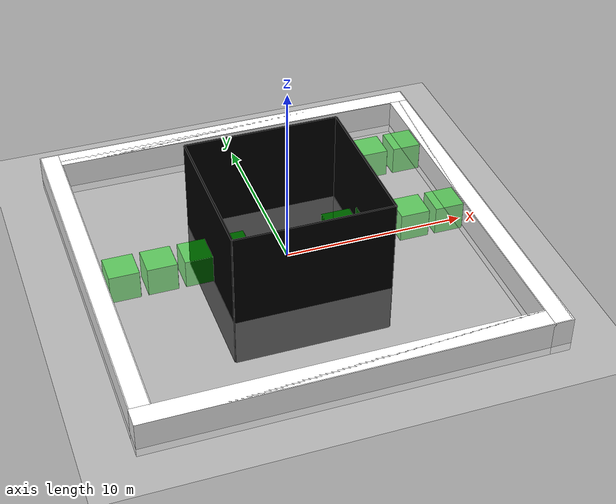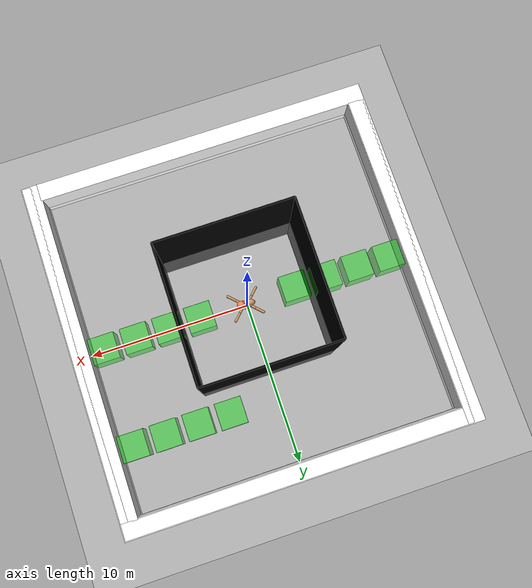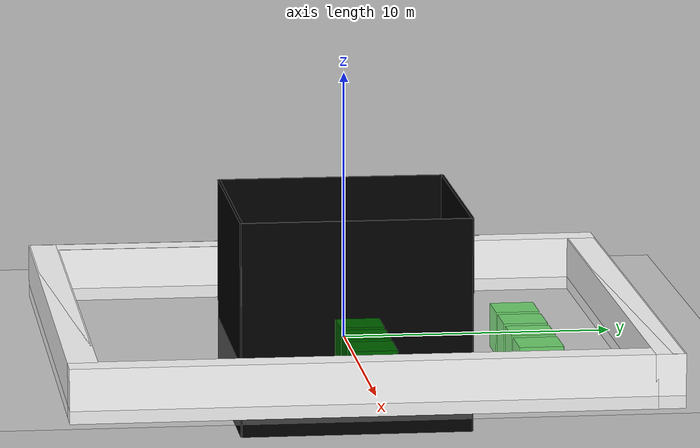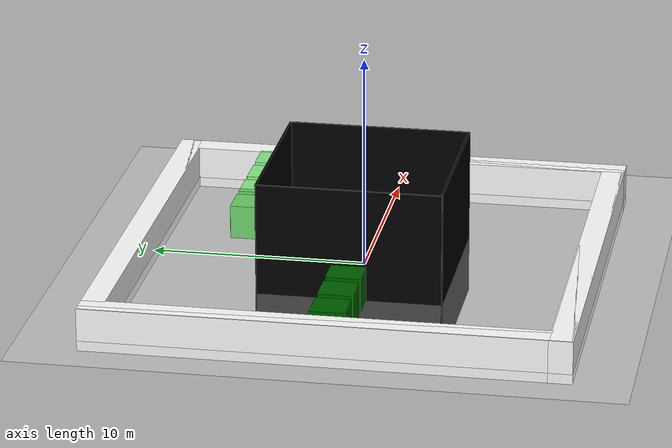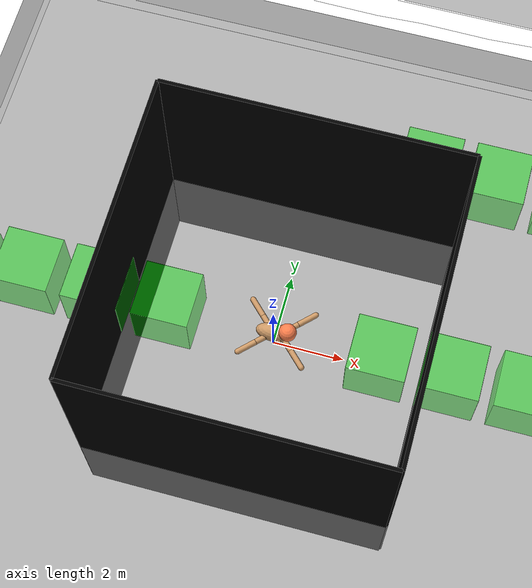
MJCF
<mujoco model="ant">
  <compiler angle="degree" coordinate="local" inertiafromgeom="true" settotalmass="40" eulerseq="XYZ"/>
  <option integrator="RK4" timestep="0.005"/>
  <custom>
    <numeric data="0.0 0.0 0.55 1.0 0.0 0.0 0.0 0.0 1.0 0.0 -1.0 0.0 -1.0 0.0 1.0" name="init_qpos"/>
  </custom>
  <default>
    <joint armature="1" damping="1" limited="true"/>
    <geom conaffinity="1" contype="1" condim="3" density="5.0" friction="1 0.5 0.5" margin="0.01" rgba="0.8 0.6 0.4 1" material="geom"/>
  </default>
    <asset>
        <texture type="skybox" builtin="gradient" rgb1=".1 .12 .15" rgb2="0 0 0" width="100" height="100"/>
        <texture builtin="checker" height="100" name="texplane" rgb1=".35 .65 .65" rgb2=".0 .4 0.6" type="2d" width="100"/>
        <material name="MatPlane" reflectance="0.25" shininess="1" specular="1" texrepeat="50 50" texture="texplane"/>
        <texture builtin="flat" height="1278" mark="cross" markrgb="1 1 1" name="texgeom" random="0.01" rgb1="0.8 0.6 0.4" rgb2="0.8 0.6 0.4" type="cube" width="127"/>
        <material name="geom" texture="texgeom" texuniform="true"/>
    </asset>
  <worldbody>
    <light directional="true" cutoff="100" exponent="1" diffuse="1 1 1" specular=".1 .1 .1" pos="0 0 1.3" dir="-0 0 -1.3" />
    <geom name='floor' material="MatPlane" pos='0 0 0' size='40 40 40' type='plane' rgba='0.9 0.9 0.9 1' condim='3' group="1"/>

    <geom name="wall-0" pos=" -0.5 -10.5  0.5" rgba="1. 1. 1. 1" size="10.5   0.5  1.0" type="box" material="" group="1" />
    <geom name="wall-1" pos="-10.5   0.5  0.5" rgba="1. 1. 1. 1" size=" 0.5  10.5  1.0" type="box" material="" group="1" />
    <geom name="wall-2" pos="  0.5  10.5  0.5" rgba="1. 1. 1. 1" size="10.5   0.5  1.0" type="box" material="" group="1" />
    <geom name="wall-3" pos=" 10.5  -0.5  0.5" rgba="1. 1. 1. 1" size=" 0.5  10.5  1.0" type="box" material="" group="1" />

    <site name="s-wall-0" pos=" -0.5 -10.5  0.5" rgba="1. 1. 1. 1" size="10.55   0.55  1.0" type="box" material="" group="1" />
    <site name="s-wall-1" pos="-10.5   0.5  0.5" rgba="1. 1. 1. 1" size=" 0.55  10.55  1.0" type="box" material="" group="1" />
    <site name="s-wall-2" pos="  0.5  10.5  0.5" rgba="1. 1. 1. 1" size="10.55   0.55  1.0" type="box" material="" group="1" />
    <site name="s-wall-3" pos=" 10.5  -0.5  0.5" rgba="1. 1. 1. 1" size=" 0.55  10.55  1.0" type="box" material="" group="1" />

    <body name="target_g0" pos = "9 0 0.8">
      <site name="t00" pos=" 0.8  0.0 0.0" rgba="0.0 1.0 0.0 0.4" size="0.01 0.8   0.8 " type="box" group="1"/>
      <site name="t01" pos="-0.8  0.0 0.0" rgba="0.0 1.0 0.0 0.4" size="0.01 0.8   0.8 " type="box" group="1"/>
      <site name="t02" pos=" 0.0  0.8 0.0" rgba="0.0 1.0 0.0 0.4" size="0.8  0.01  0.8 " type="box" group="1"/>
      <site name="t03" pos=" 0.0 -0.8 0.0" rgba="0.0 1.0 0.0 0.4" size="0.8  0.01  0.8 " type="box" group="1"/>
      <site name="t04" pos=" 0.0  0.0 0.8" rgba="0.0 1.0 0.0 0.4" size="0.8  0.8   0.01" type="box" group="1"/>
    </body>

    <body name="target_g1" pos = "7 0 0.8">
      <site name="t10" pos=" 0.8  0.0 0.0" rgba="0.0 1.0 0.0 0.4" size="0.01 0.8   0.8 " type="box" group="1"/>
      <site name="t11" pos="-0.8  0.0 0.0" rgba="0.0 1.0 0.0 0.4" size="0.01 0.8   0.8 " type="box" group="1"/>
      <site name="t12" pos=" 0.0  0.8 0.0" rgba="0.0 1.0 0.0 0.4" size="0.8  0.01  0.8 " type="box" group="1"/>
      <site name="t13" pos=" 0.0 -0.8 0.0" rgba="0.0 1.0 0.0 0.4" size="0.8  0.01  0.8 " type="box" group="1"/>
      <site name="t14" pos=" 0.0  0.0 0.8" rgba="0.0 1.0 0.0 0.4" size="0.8  0.8   0.01" type="box" group="1"/>
    </body>

    <body name="target_g2" pos = "5 0 0.8">
      <site name="t20" pos=" 0.8  0.0 0.0" rgba="0.0 1.0 0.0 0.4" size="0.01 0.8   0.8 " type="box" group="1"/>
      <site name="t21" pos="-0.8  0.0 0.0" rgba="0.0 1.0 0.0 0.4" size="0.01 0.8   0.8 " type="box" group="1"/>
      <site name="t22" pos=" 0.0  0.8 0.0" rgba="0.0 1.0 0.0 0.4" size="0.8  0.01  0.8 " type="box" group="1"/>
      <site name="t23" pos=" 0.0 -0.8 0.0" rgba="0.0 1.0 0.0 0.4" size="0.8  0.01  0.8 " type="box" group="1"/>
      <site name="t24" pos=" 0.0  0.0 0.8" rgba="0.0 1.0 0.0 0.4" size="0.8  0.8   0.01" type="box" group="1"/>
    </body>

    <body name="target_g3" pos = "3 0 0.8">
      <site name="t30" pos=" 0.8  0.0 0.0" rgba="0.0 1.0 0.0 0.4" size="0.01 0.8   0.8 " type="box" group="1"/>
      <site name="t31" pos="-0.8  0.0 0.0" rgba="0.0 1.0 0.0 0.4" size="0.01 0.8   0.8 " type="box" group="1"/>
      <site name="t32" pos=" 0.0  0.8 0.0" rgba="0.0 1.0 0.0 0.4" size="0.8  0.01  0.8 " type="box" group="1"/>
      <site name="t33" pos=" 0.0 -0.8 0.0" rgba="0.0 1.0 0.0 0.4" size="0.8  0.01  0.8 " type="box" group="1"/>
      <site name="t34" pos=" 0.0  0.0 0.8" rgba="0.0 1.0 0.0 0.4" size="0.8  0.8   0.01" type="box" group="1"/>
    </body>

    <body name="target_g4" pos = "-3 0 0.8">
      <site name="t40" pos=" 0.8  0.0 0.0" rgba="0.0 1.0 0.0 0.4" size="0.01 0.8   0.8 " type="box" group="1"/>
      <site name="t41" pos="-0.8  0.0 0.0" rgba="0.0 1.0 0.0 0.4" size="0.01 0.8   0.8 " type="box" group="1"/>
      <site name="t42" pos=" 0.0  0.8 0.0" rgba="0.0 1.0 0.0 0.4" size="0.8  0.01  0.8 " type="box" group="1"/>
      <site name="t43" pos=" 0.0 -0.8 0.0" rgba="0.0 1.0 0.0 0.4" size="0.8  0.01  0.8 " type="box" group="1"/>
      <site name="t44" pos=" 0.0  0.0 0.8" rgba="0.0 1.0 0.0 0.4" size="0.8  0.8   0.01" type="box" group="1"/>
    </body>

    <body name="target_g5" pos = "-5 0 0.8">
      <site name="t50" pos=" 0.8  0.0 0.0" rgba="0.0 1.0 0.0 0.4" size="0.01 0.8   0.8 " type="box" group="1"/>
      <site name="t51" pos="-0.8  0.0 0.0" rgba="0.0 1.0 0.0 0.4" size="0.01 0.8   0.8 " type="box" group="1"/>
      <site name="t52" pos=" 0.0  0.8 0.0" rgba="0.0 1.0 0.0 0.4" size="0.8  0.01  0.8 " type="box" group="1"/>
      <site name="t53" pos=" 0.0 -0.8 0.0" rgba="0.0 1.0 0.0 0.4" size="0.8  0.01  0.8 " type="box" group="1"/>
      <site name="t54" pos=" 0.0  0.0 0.8" rgba="0.0 1.0 0.0 0.4" size="0.8  0.8   0.01" type="box" group="1"/>
    </body>

    <body name="target_g6" pos = "-7 0 0.8">
      <site name="t60" pos=" 0.8  0.0 0.0" rgba="0.0 1.0 0.0 0.4" size="0.01 0.8   0.8 " type="box" group="1"/>
      <site name="t61" pos="-0.8  0.0 0.0" rgba="0.0 1.0 0.0 0.4" size="0.01 0.8   0.8 " type="box" group="1"/>
      <site name="t62" pos=" 0.0  0.8 0.0" rgba="0.0 1.0 0.0 0.4" size="0.8  0.01  0.8 " type="box" group="1"/>
      <site name="t63" pos=" 0.0 -0.8 0.0" rgba="0.0 1.0 0.0 0.4" size="0.8  0.01  0.8 " type="box" group="1"/>
      <site name="t64" pos=" 0.0  0.0 0.8" rgba="0.0 1.0 0.0 0.4" size="0.8  0.8   0.01" type="box" group="1"/>
    </body>

    <body name="target_g7" pos = "-9 0 0.8">
      <site name="t70" pos=" 0.8  0.0 0.0" rgba="0.0 1.0 0.0 0.4" size="0.01 0.8   0.8 " type="box" group="1"/>
      <site name="t71" pos="-0.8  0.0 0.0" rgba="0.0 1.0 0.0 0.4" size="0.01 0.8   0.8 " type="box" group="1"/>
      <site name="t72" pos=" 0.0  0.8 0.0" rgba="0.0 1.0 0.0 0.4" size="0.8  0.01  0.8 " type="box" group="1"/>
      <site name="t73" pos=" 0.0 -0.8 0.0" rgba="0.0 1.0 0.0 0.4" size="0.8  0.01  0.8 " type="box" group="1"/>
      <site name="t74" pos=" 0.0  0.0 0.8" rgba="0.0 1.0 0.0 0.4" size="0.8  0.8   0.01" type="box" group="1"/>
    </body>

    <body name="target_g8" pos = "9 6 0.8">
      <site name="t80" pos=" 0.8  0.0 0.0" rgba="0.0 1.0 0.0 0.4" size="0.01 0.8   0.8 " type="box" group="1"/>
      <site name="t81" pos="-0.8  0.0 0.0" rgba="0.0 1.0 0.0 0.4" size="0.01 0.8   0.8 " type="box" group="1"/>
      <site name="t82" pos=" 0.0  0.8 0.0" rgba="0.0 1.0 0.0 0.4" size="0.8  0.01  0.8 " type="box" group="1"/>
      <site name="t83" pos=" 0.0 -0.8 0.0" rgba="0.0 1.0 0.0 0.4" size="0.8  0.01  0.8 " type="box" group="1"/>
      <site name="t84" pos=" 0.0  0.0 0.8" rgba="0.0 1.0 0.0 0.4" size="0.8  0.8   0.01" type="box" group="1"/>
    </body>

    <body name="target_g9" pos = "7 6 0.8">
      <site name="t90" pos=" 0.8  0.0 0.0" rgba="0.0 1.0 0.0 0.4" size="0.01 0.8   0.8 " type="box" group="1"/>
      <site name="t91" pos="-0.8  0.0 0.0" rgba="0.0 1.0 0.0 0.4" size="0.01 0.8   0.8 " type="box" group="1"/>
      <site name="t92" pos=" 0.0  0.8 0.0" rgba="0.0 1.0 0.0 0.4" size="0.8  0.01  0.8 " type="box" group="1"/>
      <site name="t93" pos=" 0.0 -0.8 0.0" rgba="0.0 1.0 0.0 0.4" size="0.8  0.01  0.8 " type="box" group="1"/>
      <site name="t94" pos=" 0.0  0.0 0.8" rgba="0.0 1.0 0.0 0.4" size="0.8  0.8   0.01" type="box" group="1"/>
    </body>

    <body name="target_g10" pos = "5 6 0.8">
      <site name="t100" pos=" 0.8  0.0 0.0" rgba="0.0 1.0 0.0 0.4" size="0.01 0.8   0.8 " type="box" group="1"/>
      <site name="t101" pos="-0.8  0.0 0.0" rgba="0.0 1.0 0.0 0.4" size="0.01 0.8   0.8 " type="box" group="1"/>
      <site name="t102" pos=" 0.0  0.8 0.0" rgba="0.0 1.0 0.0 0.4" size="0.8  0.01  0.8 " type="box" group="1"/>
      <site name="t103" pos=" 0.0 -0.8 0.0" rgba="0.0 1.0 0.0 0.4" size="0.8  0.01  0.8 " type="box" group="1"/>
      <site name="t104" pos=" 0.0  0.0 0.8" rgba="0.0 1.0 0.0 0.4" size="0.8  0.8   0.01" type="box" group="1"/>
    </body>

    <body name="target_g11" pos = "3 6 0.8">
      <site name="t110" pos=" 0.8  0.0 0.0" rgba="0.0 1.0 0.0 0.4" size="0.01 0.8   0.8 " type="box" group="1"/>
      <site name="t111" pos="-0.8  0.0 0.0" rgba="0.0 1.0 0.0 0.4" size="0.01 0.8   0.8 " type="box" group="1"/>
      <site name="t112" pos=" 0.0  0.8 0.0" rgba="0.0 1.0 0.0 0.4" size="0.8  0.01  0.8 " type="box" group="1"/>
      <site name="t113" pos=" 0.0 -0.8 0.0" rgba="0.0 1.0 0.0 0.4" size="0.8  0.01  0.8 " type="box" group="1"/>
      <site name="t114" pos=" 0.0  0.0 0.8" rgba="0.0 1.0 0.0 0.4" size="0.8  0.8   0.01" type="box" group="1"/>
    </body>

    <camera name="global_camera" mode="fixed" pos="0 0 30.0" xyaxes="1 0 0 0 1 0"/>
    <camera name="global_camera_2" mode="fixed" pos="-15.5 -15.5 25.0" euler="40 0 -45"/>

    <body name="torso" pos="0 0 0.75">
      <geom name="torso_geom" pos="0 0 0" size="0.50 0.25 0.25" type="ellipsoid"/>
      <body name="head" pos="0.4 0 0.25">
	<camera name="front_camera" mode="fixed" pos="-0.1 0 0" euler="90 0 -90"/>
        <geom name="head_geom" density="0.01" rgba="1.0 0.5 0.3 1" pos="0.0 0.0 0.0" size="0.25" type="sphere"/>
        <site name="head_site" pos="0.0 0.0 0.0" size="0.005" type="sphere"/>
      </body>
      <body name="limit" pos = "0 0 0">
        <site name="lim0" pos=" 4.26  0.0 0.5" rgba="0.0 0.0 0.0 1" size="0.05 4.26 4.0" type="box" material="" group="1"/>
        <site name="lim1" pos="-4.26  0.0 0.5" rgba="0.0 0.0 0.0 1" size="0.05 4.26 4.0" type="box" material="" group="1"/>
        <site name="lim2" pos=" 0.0  4.26 0.5" rgba="0.0 0.0 0.0 1" size="4.26 0.05 4.0" type="box" material="" group="1"/>
        <site name="lim3" pos=" 0.0 -4.26 0.5" rgba="0.0 0.0 0.0 1" size="4.26 0.05 4.0" type="box" material="" group="1"/>
      </body>
      <joint armature="0" damping="0" limited="false" margin="0.01" name="root" pos="0 0 0" type="free"/>
      <body name="front_left_leg" pos="0 0 0">
        <geom fromto="0.0 0.0 0.0 0.2 0.2 0.0" name="aux_1_geom" size="0.08" type="capsule"/>
        <body name="aux_1" pos="0.4 0.2 0">
          <joint axis="0 0 1" name="hip_1" pos="0.0 0.0 0.0" range="-30 30" type="hinge"/>
          <geom fromto="0.0 0.0 0.0 0.2 0.2 0.0" name="front_left_leg_geom" size="0.08" type="capsule"/>
          <site fromto="0.0 0.0 0.0 0.2 0.2 0.0" name="front_left_leg_site" size="0.005" type="capsule"/>
          <body name="aux_11" pos="0.2 0.2 0">
            <joint axis="-1 1 0" name="ankle_1" pos="0.0 0.0 0.0" range="30 70" type="hinge"/>
            <geom fromto="0.0 0.0 0.0 0.4 0.4 0.0" name="front_left_ankle_geom" size="0.08" type="capsule"/>
            <site fromto="0.0 0.0 0.0 0.4 0.4 0.0" name="front_left_ankle_site" size="0.005" type="capsule"/>
          </body>
        </body>
      </body>
      <body name="front_right_leg" pos="0 0 0">
        <geom fromto="0.0 0.0 0.0 -0.2 0.2 0.0" name="aux_2_geom" size="0.08" type="capsule"/>
        <body name="aux_2" pos="-0.2 0.2 0">
          <joint axis="0 0 1" name="hip_2" pos="0.0 0.0 0.0" range="-30 30" type="hinge"/>
          <geom fromto="0.0 0.0 0.0 -0.2 0.2 0.0" name="front_right_leg_geom" size="0.08" type="capsule"/>
          <body name="aux_22" pos="-0.2 0.2 0">
            <joint axis="1 1 0" name="ankle_2" pos="0.0 0.0 0.0" range="-70 -30" type="hinge"/>
            <geom fromto="0.0 0.0 0.0 -0.4 0.4 0.0" name="front_right_ankle_geom" size="0.08" type="capsule"/>
          </body>
        </body>
      </body>
      <body name="back_leg" pos="0 0 0">
        <geom fromto="0.0 0.0 0.0 -0.2 -0.2 0.0" name="aux_3_geom" size="0.08" type="capsule"/>
        <body name="aux_3" pos="-0.2 -0.2 0">
          <joint axis="0 0 1" name="hip_3" pos="0.0 0.0 0.0" range="-30 30" type="hinge"/>
          <geom fromto="0.0 0.0 0.0 -0.2 -0.2 0.0" name="left_back_leg_geom" size="0.08" type="capsule"/>
          <body name="aux_33" pos="-0.2 -0.2 0">
            <joint axis="-1 1 0" name="ankle_3" pos="0.0 0.0 0.0" range="-70 -30" type="hinge"/>
            <geom fromto="0.0 0.0 0.0 -0.4 -0.4 0.0" name="left_back_ankle_geom" size="0.08" type="capsule"/>
          </body>
        </body>
      </body>
      <body name="right_back_leg" pos="0 0 0">
        <geom fromto="0.0 0.0 0.0 0.2 -0.2 0.0" name="aux_4_geom" size="0.08" type="capsule"/>
        <body name="aux_4" pos="0.4 -0.2 0">
          <joint axis="0 0 1" name="hip_4" pos="0.0 0.0 0.0" range="-30 30" type="hinge"/>
          <geom fromto="0.0 0.0 0.0 0.2 -0.2 0.0" name="right_back_leg_geom" size="0.08" type="capsule"/>
          <body name="aux_44" pos="0.2 -0.2 0">
            <joint axis="1 1 0" name="ankle_4" pos="0.0 0.0 0.0" range="30 70" type="hinge"/>
            <geom fromto="0.0 0.0 0.0 0.4 -0.4 0.0" name="right_back_ankle_geom" size="0.08" type="capsule"/>
          </body>
        </body>
      </body>
    </body>
    <site name="target_0" pos="  9 0 0.8" rgba="0.5 0.1 0.1 0.0" size="0.8  0.8  0.8" type="box" group="1" />
    <site name="target_1" pos="  7 0 0.8" rgba="0.5 0.1 0.1 0.0" size="0.8  0.8  0.8" type="box" group="1" />
    <site name="target_2" pos="  5 0 0.8" rgba="0.5 0.1 0.1 0.0" size="0.8  0.8  0.8" type="box" group="1" />
    <site name="target_3" pos="  3 0 0.8" rgba="0.5 0.1 0.1 0.0" size="0.8  0.8  0.8" type="box" group="1" />
    <site name="target_4" pos=" -3 0 0.8" rgba="0.5 0.1 0.1 0.0" size="0.8  0.8  0.8" type="box" group="1" />
    <site name="target_5" pos=" -5 0 0.8" rgba="0.5 0.1 0.1 0.0" size="0.8  0.8  0.8" type="box" group="1" />
    <site name="target_6" pos=" -7 0 0.8" rgba="0.5 0.1 0.1 0.0" size="0.8  0.8  0.8" type="box" group="1" />
    <site name="target_7" pos=" -9 0 0.8" rgba="0.5 0.1 0.1 0.0" size="0.8  0.8  0.8" type="box" group="1" />
    <site name="target_8" pos="  9 6 0.8" rgba="0.5 0.1 0.1 0.0" size="0.8  0.8  0.8" type="box" group="1" />
    <site name="target_9" pos="  7 6 0.8" rgba="0.5 0.1 0.1 0.0" size="0.8  0.8  0.8" type="box" group="1" />
    <site name="target_10" pos=" 5 6 0.8" rgba="0.5 0.1 0.1 0.0" size="0.8  0.8  0.8" type="box" group="1" />
    <site name="target_11" pos=" 3 6 0.8" rgba="0.5 0.1 0.1 0.0" size="0.8  0.8  0.8" type="box" group="1" />
  </worldbody>
  <actuator>
    <motor ctrllimited="true" ctrlrange="-1.0 1.0" joint="hip_4" gear="150"/>
    <motor ctrllimited="true" ctrlrange="-1.0 1.0" joint="ankle_4" gear="150"/>
    <motor ctrllimited="true" ctrlrange="-1.0 1.0" joint="hip_1" gear="150"/>
    <motor ctrllimited="true" ctrlrange="-1.0 1.0" joint="ankle_1" gear="150"/>
    <motor ctrllimited="true" ctrlrange="-1.0 1.0" joint="hip_2" gear="150"/>
    <motor ctrllimited="true" ctrlrange="-1.0 1.0" joint="ankle_2" gear="150"/>
    <motor ctrllimited="true" ctrlrange="-1.0 1.0" joint="hip_3" gear="150"/>
    <motor ctrllimited="true" ctrlrange="-1.0 1.0" joint="ankle_3" gear="150"/>
  </actuator>
  <sensor>
    <touch site="s-wall-0" cutoff="200"/>
    <touch site="s-wall-1" cutoff="200"/>
    <touch site="s-wall-2" cutoff="200"/>
    <touch site="s-wall-3" cutoff="200"/>
    <touch site="target_0"/>
    <touch site="target_1"/>
    <touch site="target_2"/>
    <touch site="target_3"/>
    <touch site="target_4"/>
    <touch site="target_5"/>
    <touch site="target_6"/>
    <touch site="target_7"/>
    <touch site="target_8"/>
    <touch site="target_9"/>
    <touch site="target_10"/>
    <touch site="target_11"/>
  </sensor>
</mujoco>
